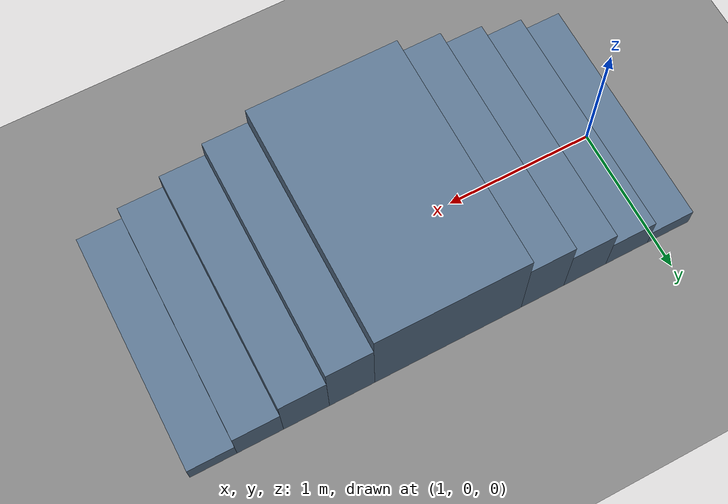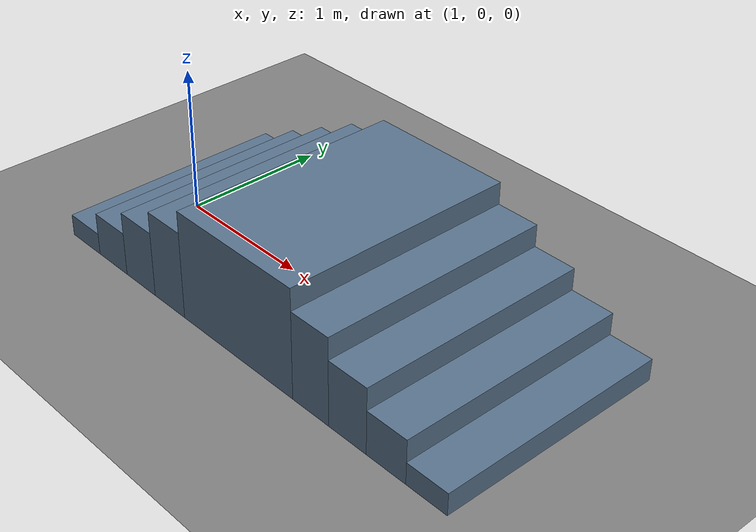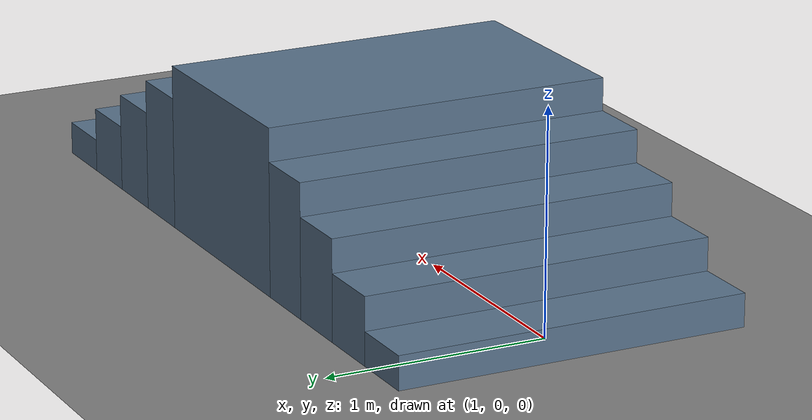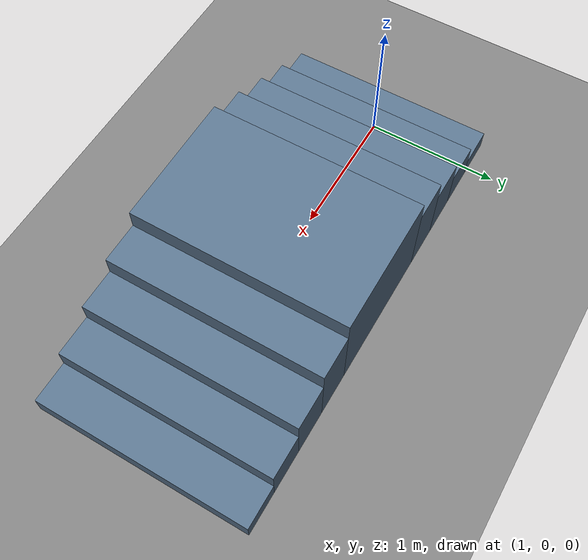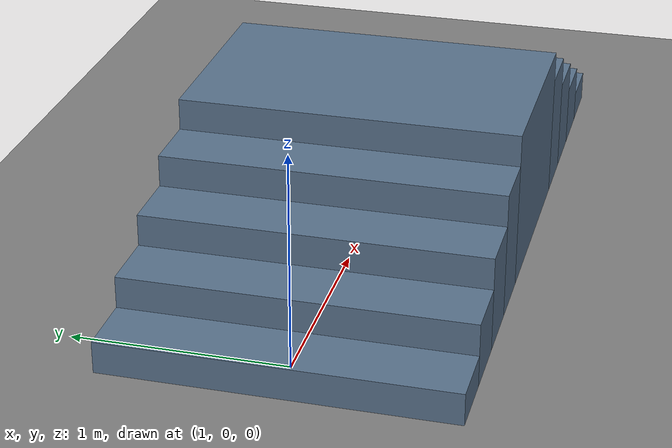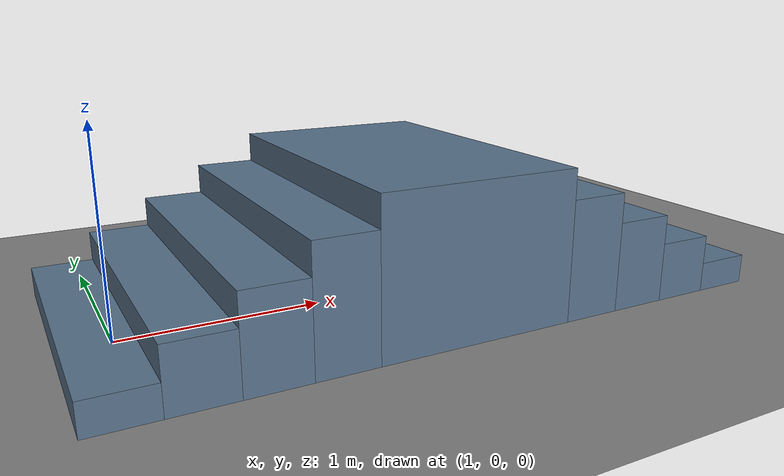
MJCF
<?xml version='1.0' encoding='utf-8'?>
<mujoco model="rs02_original_stairs_15cm">
  <compiler angle="radian" />
  <worldbody>
    <body name="terrain">
      <geom name="terrain" type="plane" pos="0 0 0" size="0 0 0.01" quat="1 0 0 0" friction="1 0.0050000000000000001 0.0001" rgba="0.5 0.5 0.5 1" contype="1" conaffinity="1" group="0" solref="0.02 1" solimp="0.90000000000000002 0.94999999999999996 0.001 0.5 2" />
      <geom name="course_0" type="box" pos="0.90000000000000002 0 0.074999999999999997" size="0.14999999999999999 0.80000000000000004 0.074999999999999997" quat="1 0 0 0" friction="1 0.0050000000000000001 0.0001" rgba="0.349999994 0.449999988 0.550000012 1" contype="1" conaffinity="1" group="0" solref="0.02 1" solimp="0.90000000000000002 0.94999999999999996 0.001 0.5 2" />
      <geom name="course_1" type="box" pos="1.2 0 0.14999999999999999" size="0.14999999999999999 0.80000000000000004 0.14999999999999999" quat="1 0 0 0" friction="1 0.0050000000000000001 0.0001" rgba="0.349999994 0.449999988 0.550000012 1" contype="1" conaffinity="1" group="0" solref="0.02 1" solimp="0.90000000000000002 0.94999999999999996 0.001 0.5 2" />
      <geom name="course_2" type="box" pos="1.5 0 0.22499999999999998" size="0.14999999999999999 0.80000000000000004 0.22499999999999998" quat="1 0 0 0" friction="1 0.0050000000000000001 0.0001" rgba="0.349999994 0.449999988 0.550000012 1" contype="1" conaffinity="1" group="0" solref="0.02 1" solimp="0.90000000000000002 0.94999999999999996 0.001 0.5 2" />
      <geom name="course_3" type="box" pos="1.7999999999999998 0 0.29999999999999999" size="0.14999999999999999 0.80000000000000004 0.29999999999999999" quat="1 0 0 0" friction="1 0.0050000000000000001 0.0001" rgba="0.349999994 0.449999988 0.550000012 1" contype="1" conaffinity="1" group="0" solref="0.02 1" solimp="0.90000000000000002 0.94999999999999996 0.001 0.5 2" />
      <geom name="course_4" type="box" pos="2.4500000000000002 0 0.375" size="0.5 0.80000000000000004 0.375" quat="1 0 0 0" friction="1 0.0050000000000000001 0.0001" rgba="0.349999994 0.449999988 0.550000012 1" contype="1" conaffinity="1" group="0" solref="0.02 1" solimp="0.90000000000000002 0.94999999999999996 0.001 0.5 2" />
      <geom name="course_5" type="box" pos="3.1000000000000001 0 0.29999999999999999" size="0.14999999999999999 0.80000000000000004 0.29999999999999999" quat="1 0 0 0" friction="1 0.0050000000000000001 0.0001" rgba="0.349999994 0.449999988 0.550000012 1" contype="1" conaffinity="1" group="0" solref="0.02 1" solimp="0.90000000000000002 0.94999999999999996 0.001 0.5 2" />
      <geom name="course_6" type="box" pos="3.3999999999999999 0 0.22499999999999998" size="0.14999999999999999 0.80000000000000004 0.22499999999999998" quat="1 0 0 0" friction="1 0.0050000000000000001 0.0001" rgba="0.349999994 0.449999988 0.550000012 1" contype="1" conaffinity="1" group="0" solref="0.02 1" solimp="0.90000000000000002 0.94999999999999996 0.001 0.5 2" />
      <geom name="course_7" type="box" pos="3.7000000000000002 0 0.14999999999999999" size="0.14999999999999999 0.80000000000000004 0.14999999999999999" quat="1 0 0 0" friction="1 0.0050000000000000001 0.0001" rgba="0.349999994 0.449999988 0.550000012 1" contype="1" conaffinity="1" group="0" solref="0.02 1" solimp="0.90000000000000002 0.94999999999999996 0.001 0.5 2" />
      <geom name="course_8" type="box" pos="4 0 0.074999999999999997" size="0.14999999999999999 0.80000000000000004 0.074999999999999997" quat="1 0 0 0" friction="1 0.0050000000000000001 0.0001" rgba="0.349999994 0.449999988 0.550000012 1" contype="1" conaffinity="1" group="0" solref="0.02 1" solimp="0.90000000000000002 0.94999999999999996 0.001 0.5 2" />
    </body>
  </worldbody>
</mujoco>
